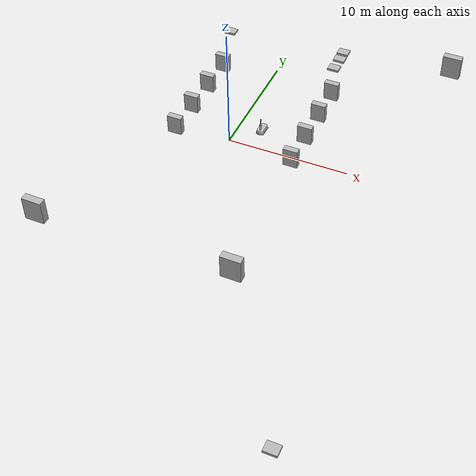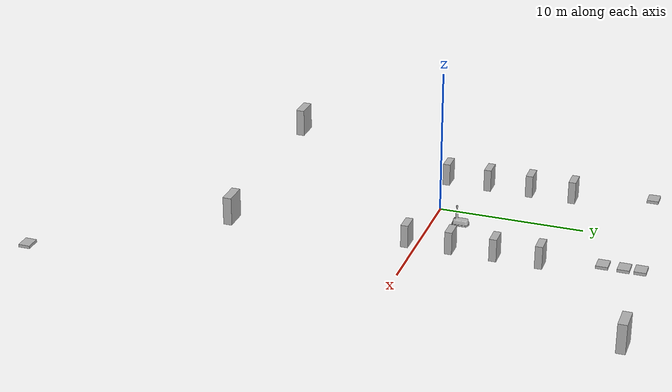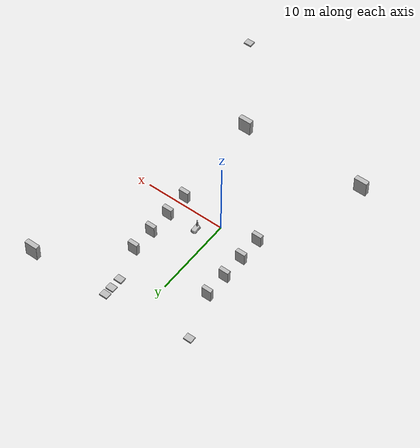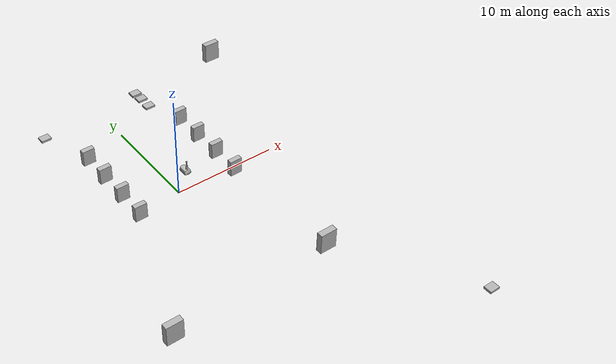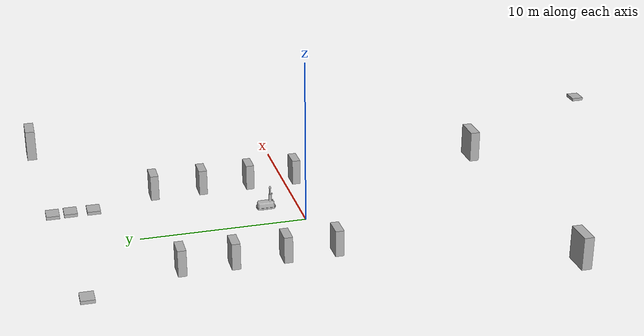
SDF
<sdf version="1.7">
 <world name="warehouse_03">
  <gravity>0 0 -9.8</gravity>
  <physics type="ode"><max_step_size>0.01</max_step_size><real_time_factor>1</real_time_factor></physics>
  <plugin name="ignition::gazebo::systems::Physics" filename="libignition-gazebo-physics-system.so"/>
  <plugin name="ignition::gazebo::systems::UserCommands" filename="libignition-gazebo-user-commands-system.so"/>
  <plugin name="ignition::gazebo::systems::SceneBroadcaster" filename="libignition-gazebo-scene-broadcaster-system.so"/>
  <plugin name="ignition::gazebo::systems::Imu" filename="ignition-gazebo-imu-system"/>
  <plugin name="ignition::gazebo::systems::Sensors" filename="ignition-gazebo-sensors-system">
   <render_engine>ogre2</render_engine>
  </plugin>
  <scene>
   <ambient>1 1 1 1</ambient>
   <background>0.3 0.7 0.9 1</background>
   <shadows>0</shadows>
   <grid>false</grid>
  </scene>
  <light type="directional" name="sun">
   <cast_shadows>0</cast_shadows>
   <pose>-5 -3 10 0 0 0</pose>
   <diffuse>1 1 1 1</diffuse>
   <specular>1 1 1 1</specular>
   <direction>0 0 -1</direction>
  </light>
  <model name="ground_plane">
   <static>true</static>
   <link name="link">
    <collision name="collision">
     <geometry><plane><normal>0.0 0.0 1</normal><size>1 1</size></plane></geometry>
    </collision>
   </link>
  </model>
  <include><uri>model://warehouse_robot</uri><name>warehouse_robot</name><pose>2 2 0.1 0 0 0</pose></include>
  <include>
   <uri>https://fuel.ignitionrobotics.org/1.0/MovAi/models/shelf_big</uri>
   <name>shelf_big_0</name>
   <pose>-9.34177 -13.5598 0 0 -0 0</pose>
  </include>
  <include>
   <uri>https://fuel.ignitionrobotics.org/1.0/MovAi/models/shelf</uri>
   <name>shelf</name>
   <pose>-4.41528 -0.690987 0 0 -0 0</pose>
  </include>
  <include>
   <uri>https://fuel.ignitionrobotics.org/1.0/MovAi/models/shelf</uri>
   <name>shelf_0</name>
   <pose>-4.41528 2.30697 0 0 -0 0</pose>
  </include>
  <include>
   <uri>https://fuel.ignitionrobotics.org/1.0/MovAi/models/shelf</uri>
   <name>shelf_1</name>
   <pose>-4.41528 5.30708 0 0 -0 0</pose>
  </include>
  <include>
   <uri>https://fuel.ignitionrobotics.org/1.0/MovAi/models/shelf</uri>
   <name>shelf_2</name>
   <pose>-4.41528 8.34352 0 0 -0 0</pose>
  </include>
  <include>
   <uri>https://fuel.ignitionrobotics.org/1.0/MovAi/models/shelf</uri>
   <name>shelf_3</name>
   <pose>5.60144 8.34352 0 0 -0 0</pose>
  </include>
  <include>
   <uri>https://fuel.ignitionrobotics.org/1.0/MovAi/models/shelf</uri>
   <name>shelf_4</name>
   <pose>5.60144 5.30708 0 0 -0 0</pose>
  </include>
  <include>
   <uri>https://fuel.ignitionrobotics.org/1.0/MovAi/models/shelf</uri>
   <name>shelf_5</name>
   <pose>5.60144 -0.690987 0 0 -0 0</pose>
  </include>
  <include>
   <uri>https://fuel.ignitionrobotics.org/1.0/MovAi/models/shelf</uri>
   <name>shelf_6</name>
   <pose>5.60144 2.30697 0 0 -0 0</pose>
  </include>
  <include>
   <uri>https://fuel.ignitionrobotics.org/1.0/MovAi/models/pallet_box_mobile</uri>
   <name>pallet_box_mobile</name>
   <pose>4.4161 14.6952 0.01 0 -0 0</pose>
  </include>
  <include>
   <uri>https://fuel.ignitionrobotics.org/1.0/MovAi/models/pallet_box_mobile</uri>
   <name>pallet_box_mobile_0</name>
   <pose>4.45415 13.6212 0.01 0 -0 0</pose>
  </include>
  <include>
   <uri>https://fuel.ignitionrobotics.org/1.0/MovAi/models/pallet_box_mobile</uri>
   <name>pallet_box_mobile_1</name>
   <pose>4.4468 12.229 0.01 0 -0 0</pose>
  </include>
  <include>
   <uri>https://fuel.ignitionrobotics.org/1.0/MovAi/models/pallet_box_mobile</uri>
   <name>pallet_box</name>
   <pose>-6.11913 13.7079 0.01 0 -0 0</pose>
   <static>true</static>
  </include>
  <include>
   <uri>https://fuel.ignitionrobotics.org/1.0/MovAi/models/shelf_big</uri>
   <name>shelf_big_1</name>
   <pose>13.9821 15.319 0 0 -0 0</pose>
  </include>
  <include>
   <uri>https://fuel.ignitionrobotics.org/1.0/MovAi/models/shelf_big</uri>
   <name>shelf_big_2</name>
   <pose>6.19777 -12.9647 0 0 -0 0</pose>
  </include>
  <include>
   <uri>https://fuel.ignitionrobotics.org/1.0/MovAi/models/pallet_box_mobile</uri>
   <name>pallet_box_0</name>
   <pose>14.0222 -24.335 0.01 0 -0 0</pose>
   <static>true</static>
  </include>
 </world>
</sdf>

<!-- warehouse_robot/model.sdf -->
<sdf version="1.6">
  <model name="warehouse_robot">
    <static>false</static>
    <!-- base_link (robot body) -->
    <link name="base_link">
      <visual name="visual">
        <geometry>
          <mesh>
            <uri>meshes/robot.dae</uri>
          </mesh>
        </geometry>
      </visual>
      <collision name="collision_base">
        <pose>0 0 0.20437 0 0 0</pose>
        <geometry>
          <box>
            <size>0.55508 1.0228 0.40874</size>
          </box>
        </geometry>
      </collision>
      <collision name="collision_bumper">
        <pose>0 0 0.062205 0 0 0</pose>
        <geometry>
          <box>
            <size>0.67266 1.17126 0.12441</size>
          </box>
        </geometry>
      </collision>
      <collision name="collision_column_large">
        <pose>0 -0.27539 0.43738 0 0 0</pose>
        <geometry>
          <cylinder>
            <radius>0.08652</radius>
            <length>0.87476</length>
          </cylinder>
        </geometry>
      </collision>
      <collision name="collision_column_small">
        <pose>0 -0.27539 0.70424 0 0 0</pose>
        <geometry>
          <cylinder>
            <radius>0.04261</radius>
            <length>1.40848</length>
          </cylinder>
        </geometry>
      </collision>
      <visual name="visual_camera">
        <pose>0 -0.37 0.86 0 0 0</pose>
        <geometry>
          <mesh>
            <uri>model://rgbd_camera/meshes/3dCamera.dae</uri>
          </mesh>
        </geometry>
      </visual>
      <visual name="visual_lidar2d">
        <pose>0 -0.42 0.415 0 0 0</pose>
        <geometry>
          <mesh>
            <uri>model://lidar_2d/meshes/lidar_2d.dae</uri>
          </mesh>
        </geometry>
      </visual>

      <!-- Sensors: Camera, Lidar, IMU -->
      <!-- FRONT CAMERA -->
      <sensor name="front_camera" type="camera">
        <!-- Relativa Pose to base_link -->
        <pose>0 -0.37 0.86 0 0 -1.5708</pose>
        <update_rate>30</update_rate>
        <always_on>true</always_on>
        <visualize>true</visualize>
        <topic>/robot/camera/image</topic> <!-- Topic in Gazebo -->
        <camera>
          <horizontal_fov>1.047</horizontal_fov>
          <image>
            <width>640</width>
            <height>480</height>
            <format>R8G8B8</format>
          </image>
          <clip>
            <near>0.1</near>
            <far>50.0</far>
          </clip>
        </camera>
        <gz_frame_id>base_link</gz_frame_id>
      </sensor>
      <!-- LIDAR 2D (type “planar”  360°) -->
      <sensor name="lidar_2d" type="gpu_lidar">
        <pose>0.0 0 0.25 0 0 0</pose>
        <update_rate>20</update_rate>
        <always_on>true</always_on>
        <visualize>true</visualize>
        <topic>/robot/lidar2d/scan</topic>
        <lidar>
          <scan>
            <horizontal>
              <samples>920</samples>
              <resolution>1</resolution>
              <min_angle>-3.14159</min_angle>
              <max_angle>3.14159</max_angle>
            </horizontal>
          </scan>
          <range>
            <min>0.5</min>
            <max>10</max>
            <resolution>0.03</resolution>
          </range>
          <noise>
            <type>gaussian</type>
            <mean>0</mean>
            <stddev>0.01</stddev>
          </noise>
        </lidar>
        <gz_frame_id>base_link</gz_frame_id>
      </sensor>
      <!-- LIDAR 3D (type Velodyne / Ouster simple) -->
      <sensor name="lidar_3d" type="gpu_lidar">
        <pose>0.0 0 1.5 0 0 0</pose>
        <update_rate>10</update_rate>
        <always_on>true</always_on>
        <visualize>true</visualize>
        <topic>/robot/lidar3d</topic>
        <lidar>
          <scan>
            <horizontal>
              <samples>1024</samples>
              <resolution>1</resolution>
              <min_angle>-3.14159</min_angle>
              <max_angle>3.14159</max_angle>
            </horizontal>
            <vertical>
              <samples>64</samples>
              <resolution>1</resolution>
              <min_angle>-0.2897</min_angle>
              <max_angle>0.2897</max_angle>
            </vertical>
          </scan>
          <range>
            <min>0.8</min>
            <max>20</max>
            <resolution>0.003</resolution>
          </range>
          <noise>
            <type>gaussian</type>
            <mean>0</mean>
            <stddev>0.03</stddev>
          </noise>
        </lidar>
        <gz_frame_id>base_link</gz_frame_id>
      </sensor>
      <!-- IMU -->
      <sensor name="imu" type="imu">
        <pose>0 0 0.2 0 0 0</pose>
        <update_rate>100</update_rate>
        <always_on>true</always_on>
        <topic>/robot/imu</topic>
        <imu>
        </imu>
        <gz_frame_id>base_link</gz_frame_id>
      </sensor>
    </link>
    <!-- Ruedas: links + joints  -->
    <!-- FRONT LEFT WHEEL -->
    <link name="left_front_wheel_link">
      <pose>0.25 0.26 0.129 0 1.57 0</pose>
      <inertial>
        <mass>1.0</mass>
        <inertia>
          <ixx>0.001</ixx>
          <ixy>0.0</ixy>
          <ixz>0.0</ixz>
          <iyy>0.001</iyy>
          <iyz>0.0</iyz>
          <izz>0.001</izz>
        </inertia>
      </inertial>
      <collision name="left_front_wheel_collision">
        <geometry>
          <cylinder>
            <radius>0.129</radius>
            <length>0.05</length>
          </cylinder>
        </geometry>
      </collision>
      <visual name="left_front_wheel_visual">
        <geometry>
          <cylinder>
            <radius>0.129</radius>
            <length>0.05</length>
          </cylinder>
        </geometry>
      </visual>
    </link>
    <joint name="left_front_wheel" type="revolute">
      <parent>base_link</parent>
      <child>left_front_wheel_link</child>
      <pose>0 0 0 0 0 0</pose>
        <axis>
            <xyz>0 0 1</xyz>
            <limit>
              <lower>-1.79769e+308</lower>
              <upper>1.79769e+308</upper>
            </limit>
        </axis>
    </joint>
    <!-- REAR LEFT WHEEL -->
    <link name="left_rear_wheel_link">
      <pose>-0.25 0.26 0.129 0 1.57 0</pose>
      <inertial>
        <mass>1.0</mass>
        <inertia>
          <ixx>0.001</ixx>
          <ixy>0.0</ixy>
          <ixz>0.0</ixz>
          <iyy>0.001</iyy>
          <iyz>0.0</iyz>
          <izz>0.001</izz>
        </inertia>
      </inertial>
      <collision name="left_rear_wheel_collision">
        <geometry>
          <cylinder>
            <radius>0.129</radius>
            <length>0.05</length>
          </cylinder>
        </geometry>
      </collision>
      <visual name="left_rear_wheel_visual">
        <geometry>
          <cylinder>
            <radius>0.129</radius>
            <length>0.05</length>
          </cylinder>
        </geometry>
      </visual>
    </link>
    <joint name="left_rear_wheel" type="revolute">
      <parent>base_link</parent>
      <child>left_rear_wheel_link</child>
      <pose>0 0 0 0 0 0</pose>
         <axis>
            <xyz>0 0 1</xyz>
            <limit>
              <lower>-1.79769e+308</lower>
              <upper>1.79769e+308</upper>
            </limit>
        </axis>
    </joint>
    <!-- FRONT RIGHT WHEEL -->
    <link name="right_front_wheel_link">
      <pose>0.25 -0.26 0.129 0 1.57 0</pose>
      <inertial>
        <mass>1.0</mass>
        <inertia>
          <ixx>0.001</ixx>
          <ixy>0.0</ixy>
          <ixz>0.0</ixz>
          <iyy>0.001</iyy>
          <iyz>0.0</iyz>
          <izz>0.001</izz>
        </inertia>
      </inertial>
      <collision name="right_front_wheel_collision">
        <geometry>
          <cylinder>
            <radius>0.129</radius>
            <length>0.05</length>
          </cylinder>
        </geometry>
      </collision>
      <visual name="right_front_wheel_visual">
        <geometry>
          <cylinder>
            <radius>0.129</radius>
            <length>0.05</length>
          </cylinder>
        </geometry>
      </visual>
    </link>
    <joint name="right_front_wheel" type="revolute">
      <parent>base_link</parent>
      <child>right_front_wheel_link</child>
      <pose>0 0 0 0 0 0</pose>
        <axis>
            <xyz>0 0 1</xyz>
            <limit>
              <lower>-1.79769e+308</lower>
              <upper>1.79769e+308</upper>
            </limit>
        </axis>
    </joint>
    <!-- REAR RIGHT WHEEL -->
    <link name="right_rear_wheel_link">
      <pose>-0.25 -0.26 0.129 0 1.57 0</pose>
      <inertial>
        <mass>1.0</mass>
        <inertia>
          <ixx>0.001</ixx>
          <ixy>0.0</ixy>
          <ixz>0.0</ixz>
          <iyy>0.001</iyy>
          <iyz>0.0</iyz>
          <izz>0.001</izz>
        </inertia>
      </inertial>
      <collision name="right_rear_wheel_collision">
        <geometry>
          <cylinder>
            <radius>0.129</radius>
            <length>0.05</length>
          </cylinder>
        </geometry>
      </collision>
      <visual name="right_rear_wheel_visual">
        <geometry>
          <cylinder>
            <radius>0.129</radius>
            <length>0.05</length>
          </cylinder>
        </geometry>
      </visual>
    </link>
    <joint name="right_rear_wheel" type="revolute">
      <parent>base_link</parent>
      <child>right_rear_wheel_link</child>
      <pose>0 0 0 0 0 0</pose>
         <axis>
            <xyz>0 0 1</xyz>
            <limit>
              <lower>-1.79769e+308</lower>
              <upper>1.79769e+308</upper>
            </limit>
        </axis>
    </joint>
    <!-- Plugin DiffDrive        -->
    <plugin filename="libignition-gazebo-diff-drive-system.so" name="ignition::gazebo::systems::DiffDrive">
      <left_joint>left_front_wheel</left_joint>
      <left_joint>left_rear_wheel</left_joint>
      <right_joint>right_front_wheel</right_joint>
      <right_joint>right_rear_wheel</right_joint>
      <wheel_separation>0.52</wheel_separation>
      <wheel_radius>0.129</wheel_radius>
      <odom_publish_frequency>10</odom_publish_frequency>
      <topic>/robot/cmd_vel</topic>
      <odom_topic>/robot/odometry</odom_topic>
      <tf_topic>/robot/tf_odom_to_baselink</tf_topic>
      <frame_id>odom</frame_id>
      <child_frame_id>/base_link</child_frame_id>
    </plugin>
  </model>
</sdf>

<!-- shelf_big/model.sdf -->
<sdf version="1.7">
  <model name="shelf_big">
    <static>true</static>
    <link name="link">
      <pose>0 0 1.0 0 0 0</pose>
      <visual name="visual">
        <geometry>
          <box>
            <size>1.6 0.6 2.0</size>
          </box>
        </geometry>
        <material>
          <ambient>0.7 0.7 0.7 1</ambient>
          <diffuse>0.7 0.7 0.7 1</diffuse>
        </material>
      </visual>
      <collision name="collision">
        <geometry>
          <box>
            <size>1.6 0.6 2.0</size>
          </box>
        </geometry>
      </collision>
    </link>
  </model>
</sdf>

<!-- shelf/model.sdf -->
<sdf version="1.7">
  <model name="shelf">
    <static>true</static>
    <link name="link">
      <pose>0 0 0.8 0 0 0</pose>
      <visual name="visual">
        <geometry>
          <box>
            <size>1.2 0.5 1.6</size>
          </box>
        </geometry>
        <material>
          <ambient>0.7 0.7 0.7 1</ambient>
          <diffuse>0.7 0.7 0.7 1</diffuse>
        </material>
      </visual>
      <collision name="collision">
        <geometry>
          <box>
            <size>1.2 0.5 1.6</size>
          </box>
        </geometry>
      </collision>
    </link>
  </model>
</sdf>

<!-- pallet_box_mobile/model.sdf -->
<sdf version="1.7">
  <model name="pallet_box_mobile">
    <static>true</static>
    <link name="link">
      <pose>0 0 0.1 0 0 0</pose>
      <visual name="visual">
        <geometry>
          <box>
            <size>1.0 0.8 0.2</size>
          </box>
        </geometry>
        <material>
          <ambient>0.7 0.7 0.7 1</ambient>
          <diffuse>0.7 0.7 0.7 1</diffuse>
        </material>
      </visual>
      <collision name="collision">
        <geometry>
          <box>
            <size>1.0 0.8 0.2</size>
          </box>
        </geometry>
      </collision>
    </link>
  </model>
</sdf>
